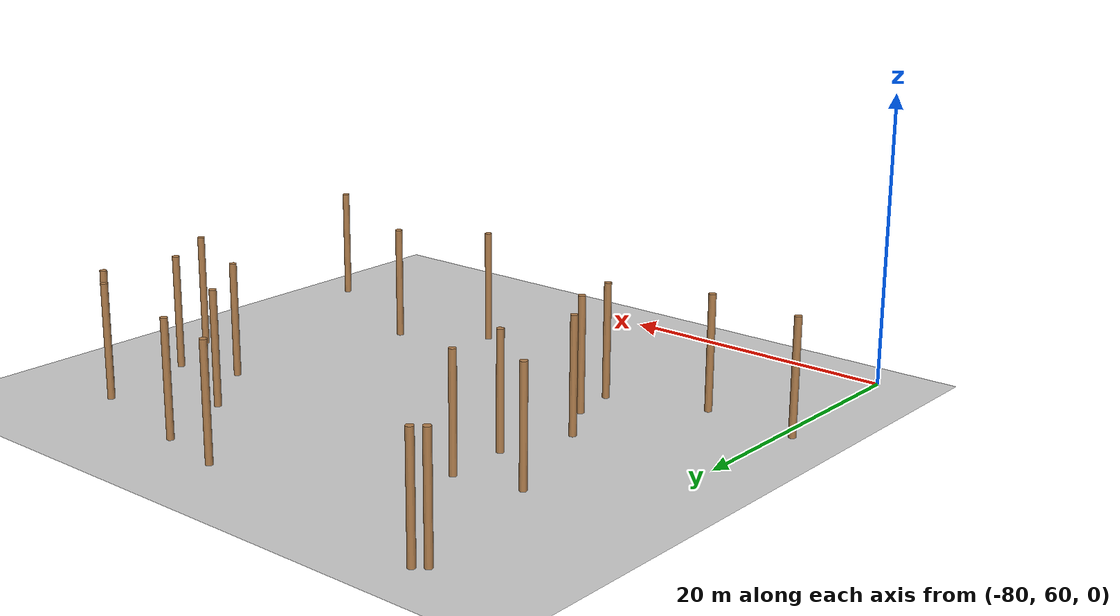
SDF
<sdf version="1.5">
 <world name="padure_tactica">
  <include><uri>model://sun</uri></include>
  <include><uri>model://ground_plane</uri></include>
  <model name="tree_0">
   <static>true</static>
   <pose>-73.33 89.64 4.0 0 0 0</pose>
   <link name="link">
    <collision name="collision">
     <geometry><cylinder><radius>0.25</radius><length>8.0</length></cylinder></geometry>
    </collision>
    <visual name="visual">
     <geometry><cylinder><radius>0.25</radius><length>8.0</length></cylinder></geometry>
     <material>
      <script><uri>file://media/materials/scripts/gazebo.material</uri><name>Gazebo/Wood</name></script>
     </material>
    </visual>
   </link>
  </model>
  <model name="tree_30">
   <static>true</static>
   <pose>-68.78 90.68 4.0 0 0 0</pose>
   <link name="link">
    <collision name="collision">
     <geometry><cylinder><radius>0.25</radius><length>8.0</length></cylinder></geometry>
    </collision>
    <visual name="visual">
     <geometry><cylinder><radius>0.25</radius><length>8.0</length></cylinder></geometry>
     <material>
      <script><uri>file://media/materials/scripts/gazebo.material</uri><name>Gazebo/Wood</name></script>
     </material>
    </visual>
   </link>
  </model>
  <model name="tree_133">
   <static>true</static>
   <pose>-45.59 87.35 4.0 0 0 0</pose>
   <link name="link">
    <collision name="collision">
     <geometry><cylinder><radius>0.25</radius><length>8.0</length></cylinder></geometry>
    </collision>
    <visual name="visual">
     <geometry><cylinder><radius>0.25</radius><length>8.0</length></cylinder></geometry>
     <material>
      <script><uri>file://media/materials/scripts/gazebo.material</uri><name>Gazebo/Wood</name></script>
     </material>
    </visual>
   </link>
  </model>
  <model name="tree_171">
   <static>true</static>
   <pose>-47.95 73.56 4.0 0 0 0</pose>
   <link name="link">
    <collision name="collision">
     <geometry><cylinder><radius>0.25</radius><length>8.0</length></cylinder></geometry>
    </collision>
    <visual name="visual">
     <geometry><cylinder><radius>0.25</radius><length>8.0</length></cylinder></geometry>
     <material>
      <script><uri>file://media/materials/scripts/gazebo.material</uri><name>Gazebo/Wood</name></script>
     </material>
    </visual>
   </link>
  </model>
  <model name="tree_188">
   <static>true</static>
   <pose>-42.78 95.93 4.0 0 0 0</pose>
   <link name="link">
    <collision name="collision">
     <geometry><cylinder><radius>0.25</radius><length>8.0</length></cylinder></geometry>
    </collision>
    <visual name="visual">
     <geometry><cylinder><radius>0.25</radius><length>8.0</length></cylinder></geometry>
     <material>
      <script><uri>file://media/materials/scripts/gazebo.material</uri><name>Gazebo/Wood</name></script>
     </material>
    </visual>
   </link>
  </model>
  <model name="tree_207">
   <static>true</static>
   <pose>-67.55 74.17 4.0 0 0 0</pose>
   <link name="link">
    <collision name="collision">
     <geometry><cylinder><radius>0.25</radius><length>8.0</length></cylinder></geometry>
    </collision>
    <visual name="visual">
     <geometry><cylinder><radius>0.25</radius><length>8.0</length></cylinder></geometry>
     <material>
      <script><uri>file://media/materials/scripts/gazebo.material</uri><name>Gazebo/Wood</name></script>
     </material>
    </visual>
   </link>
  </model>
  <model name="tree_208">
   <static>true</static>
   <pose>-70.17 81.03 4.0 0 0 0</pose>
   <link name="link">
    <collision name="collision">
     <geometry><cylinder><radius>0.25</radius><length>8.0</length></cylinder></geometry>
    </collision>
    <visual name="visual">
     <geometry><cylinder><radius>0.25</radius><length>8.0</length></cylinder></geometry>
     <material>
      <script><uri>file://media/materials/scripts/gazebo.material</uri><name>Gazebo/Wood</name></script>
     </material>
    </visual>
   </link>
  </model>
  <model name="tree_232">
   <static>true</static>
   <pose>-75.36 101.18 4.0 0 0 0</pose>
   <link name="link">
    <collision name="collision">
     <geometry><cylinder><radius>0.25</radius><length>8.0</length></cylinder></geometry>
    </collision>
    <visual name="visual">
     <geometry><cylinder><radius>0.25</radius><length>8.0</length></cylinder></geometry>
     <material>
      <script><uri>file://media/materials/scripts/gazebo.material</uri><name>Gazebo/Wood</name></script>
     </material>
    </visual>
   </link>
  </model>
  <model name="tree_385">
   <static>true</static>
   <pose>-80.74 72.22 4.0 0 0 0</pose>
   <link name="link">
    <collision name="collision">
     <geometry><cylinder><radius>0.25</radius><length>8.0</length></cylinder></geometry>
    </collision>
    <visual name="visual">
     <geometry><cylinder><radius>0.25</radius><length>8.0</length></cylinder></geometry>
     <material>
      <script><uri>file://media/materials/scripts/gazebo.material</uri><name>Gazebo/Wood</name></script>
     </material>
    </visual>
   </link>
  </model>
  <model name="tree_469">
   <static>true</static>
   <pose>-49.24 92.20 4.0 0 0 0</pose>
   <link name="link">
    <collision name="collision">
     <geometry><cylinder><radius>0.25</radius><length>8.0</length></cylinder></geometry>
    </collision>
    <visual name="visual">
     <geometry><cylinder><radius>0.25</radius><length>8.0</length></cylinder></geometry>
     <material>
      <script><uri>file://media/materials/scripts/gazebo.material</uri><name>Gazebo/Wood</name></script>
     </material>
    </visual>
   </link>
  </model>
  <model name="tree_475">
   <static>true</static>
   <pose>-68.50 86.08 4.0 0 0 0</pose>
   <link name="link">
    <collision name="collision">
     <geometry><cylinder><radius>0.25</radius><length>8.0</length></cylinder></geometry>
    </collision>
    <visual name="visual">
     <geometry><cylinder><radius>0.25</radius><length>8.0</length></cylinder></geometry>
     <material>
      <script><uri>file://media/materials/scripts/gazebo.material</uri><name>Gazebo/Wood</name></script>
     </material>
    </visual>
   </link>
  </model>
  <model name="tree_530">
   <static>true</static>
   <pose>-76.06 100.60 4.0 0 0 0</pose>
   <link name="link">
    <collision name="collision">
     <geometry><cylinder><radius>0.25</radius><length>8.0</length></cylinder></geometry>
    </collision>
    <visual name="visual">
     <geometry><cylinder><radius>0.25</radius><length>8.0</length></cylinder></geometry>
     <material>
      <script><uri>file://media/materials/scripts/gazebo.material</uri><name>Gazebo/Wood</name></script>
     </material>
    </visual>
   </link>
  </model>
  <model name="tree_672">
   <static>true</static>
   <pose>-53.50 69.97 4.0 0 0 0</pose>
   <link name="link">
    <collision name="collision">
     <geometry><cylinder><radius>0.25</radius><length>8.0</length></cylinder></geometry>
    </collision>
    <visual name="visual">
     <geometry><cylinder><radius>0.25</radius><length>8.0</length></cylinder></geometry>
     <material>
      <script><uri>file://media/materials/scripts/gazebo.material</uri><name>Gazebo/Wood</name></script>
     </material>
    </visual>
   </link>
  </model>
  <model name="tree_691">
   <static>true</static>
   <pose>-40.32 94.15 4.0 0 0 0</pose>
   <link name="link">
    <collision name="collision">
     <geometry><cylinder><radius>0.25</radius><length>8.0</length></cylinder></geometry>
    </collision>
    <visual name="visual">
     <geometry><cylinder><radius>0.25</radius><length>8.0</length></cylinder></geometry>
     <material>
      <script><uri>file://media/materials/scripts/gazebo.material</uri><name>Gazebo/Wood</name></script>
     </material>
    </visual>
   </link>
  </model>
  <model name="tree_838">
   <static>true</static>
   <pose>-41.24 88.75 4.0 0 0 0</pose>
   <link name="link">
    <collision name="collision">
     <geometry><cylinder><radius>0.25</radius><length>8.0</length></cylinder></geometry>
    </collision>
    <visual name="visual">
     <geometry><cylinder><radius>0.25</radius><length>8.0</length></cylinder></geometry>
     <material>
      <script><uri>file://media/materials/scripts/gazebo.material</uri><name>Gazebo/Wood</name></script>
     </material>
    </visual>
   </link>
  </model>
  <model name="tree_1011">
   <static>true</static>
   <pose>-38.65 84.36 4.0 0 0 0</pose>
   <link name="link">
    <collision name="collision">
     <geometry><cylinder><radius>0.25</radius><length>8.0</length></cylinder></geometry>
    </collision>
    <visual name="visual">
     <geometry><cylinder><radius>0.25</radius><length>8.0</length></cylinder></geometry>
     <material>
      <script><uri>file://media/materials/scripts/gazebo.material</uri><name>Gazebo/Wood</name></script>
     </material>
    </visual>
   </link>
  </model>
  <model name="tree_1029">
   <static>true</static>
   <pose>-51.55 98.01 4.0 0 0 0</pose>
   <link name="link">
    <collision name="collision">
     <geometry><cylinder><radius>0.25</radius><length>8.0</length></cylinder></geometry>
    </collision>
    <visual name="visual">
     <geometry><cylinder><radius>0.25</radius><length>8.0</length></cylinder></geometry>
     <material>
      <script><uri>file://media/materials/scripts/gazebo.material</uri><name>Gazebo/Wood</name></script>
     </material>
    </visual>
   </link>
  </model>
  <model name="tree_1066">
   <static>true</static>
   <pose>-56.53 99.07 4.0 0 0 0</pose>
   <link name="link">
    <collision name="collision">
     <geometry><cylinder><radius>0.25</radius><length>8.0</length></cylinder></geometry>
    </collision>
    <visual name="visual">
     <geometry><cylinder><radius>0.25</radius><length>8.0</length></cylinder></geometry>
     <material>
      <script><uri>file://media/materials/scripts/gazebo.material</uri><name>Gazebo/Wood</name></script>
     </material>
    </visual>
   </link>
  </model>
  <model name="tree_1117">
   <static>true</static>
   <pose>-68.04 77.53 4.0 0 0 0</pose>
   <link name="link">
    <collision name="collision">
     <geometry><cylinder><radius>0.25</radius><length>8.0</length></cylinder></geometry>
    </collision>
    <visual name="visual">
     <geometry><cylinder><radius>0.25</radius><length>8.0</length></cylinder></geometry>
     <material>
      <script><uri>file://media/materials/scripts/gazebo.material</uri><name>Gazebo/Wood</name></script>
     </material>
    </visual>
   </link>
  </model>
  <model name="tree_1139">
   <static>true</static>
   <pose>-74.15 71.81 4.0 0 0 0</pose>
   <link name="link">
    <collision name="collision">
     <geometry><cylinder><radius>0.25</radius><length>8.0</length></cylinder></geometry>
    </collision>
    <visual name="visual">
     <geometry><cylinder><radius>0.25</radius><length>8.0</length></cylinder></geometry>
     <material>
      <script><uri>file://media/materials/scripts/gazebo.material</uri><name>Gazebo/Wood</name></script>
     </material>
    </visual>
   </link>
  </model>
  <model name="tree_1185">
   <static>true</static>
   <pose>-37.15 68.38 4.0 0 0 0</pose>
   <link name="link">
    <collision name="collision">
     <geometry><cylinder><radius>0.25</radius><length>8.0</length></cylinder></geometry>
    </collision>
    <visual name="visual">
     <geometry><cylinder><radius>0.25</radius><length>8.0</length></cylinder></geometry>
     <material>
      <script><uri>file://media/materials/scripts/gazebo.material</uri><name>Gazebo/Wood</name></script>
     </material>
    </visual>
   </link>
  </model>
 </world>
</sdf>
